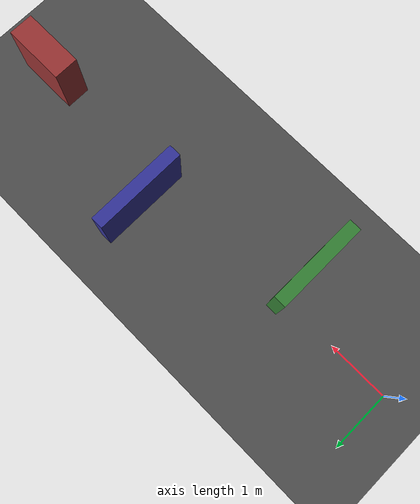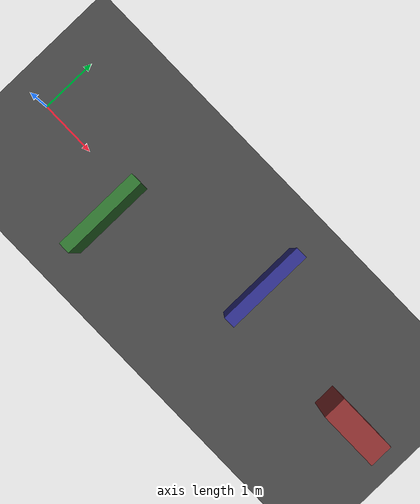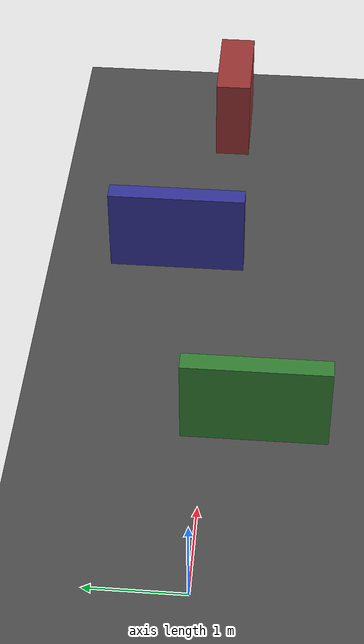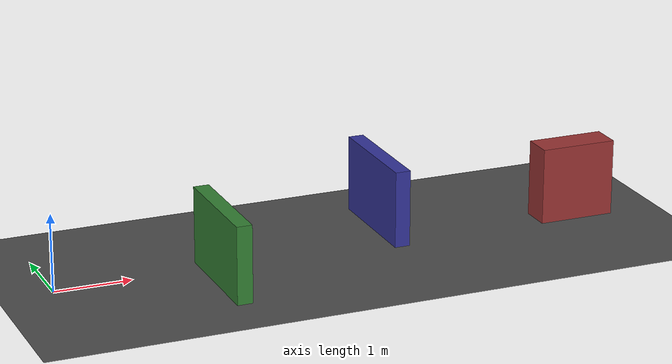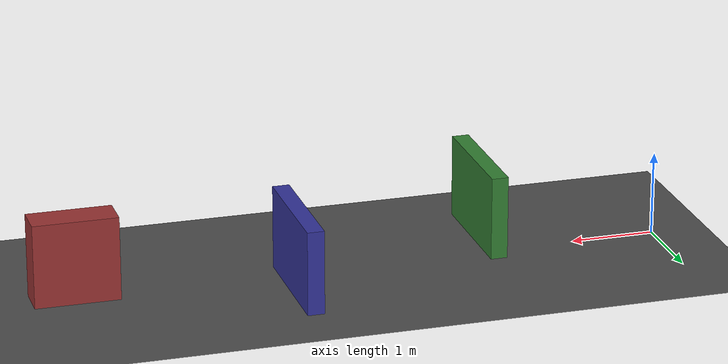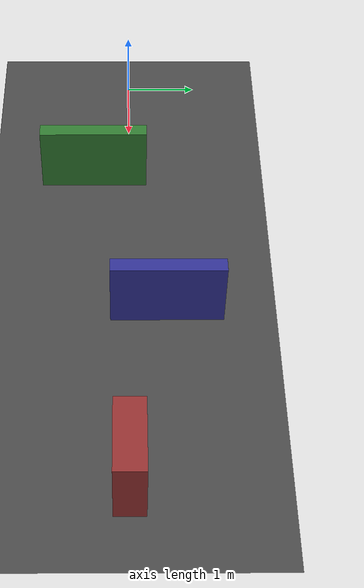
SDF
<?xml version="1.0" ?>
<sdf version="1.8">
    <world name="slalom_gauntlet">
        <physics name="1ms" type="ignored">
            <max_step_size>0.001</max_step_size>
            <real_time_factor>1.0</real_time_factor>
        </physics>
        <plugin filename="gz-sim-physics-system" name="gz::sim::systems::Physics"/>
        <plugin filename="gz-sim-user-commands-system" name="gz::sim::systems::UserCommands"/>
        <plugin filename="gz-sim-scene-broadcaster-system" name="gz::sim::systems::SceneBroadcaster"/>
        <plugin filename="gz-sim-contact-system" name="gz::sim::systems::Contact"/>
        <plugin filename="gz-sim-sensors-system" name="gz::sim::systems::Sensors">
            <render_engine>ogre2</render_engine>
        </plugin>
        <plugin filename="gz-sim-imu-system" name="gz::sim::systems::Imu"/>

        <light type="directional" name="sun">
            <cast_shadows>true</cast_shadows>
            <pose>0 0 10 0 0 0</pose>
            <direction>-0.5 0.1 -0.9</direction>
        </light>

        <!-- THE GAUNTLET: 3 Pillars requiring 3 distinct strafe maneuvers -->

        <!-- Pillar 1: Right Side Obstacle -->
        <model name="wall_1">
            <static>true</static>
            <pose>2.0 -0.5 0.5 0 0 0</pose>
            <link name="link">
                <collision name="c1"><geometry><box><size>0.2 1.5 1.0</size></box></geometry></collision>
                <visual name="v1"><geometry><box><size>0.2 1.5 1.0</size></box></geometry>
                    <material><ambient>0.2 0.5 0.2 1</ambient><diffuse>0.2 0.5 0.2 1</diffuse></material>
                </visual>
            </link>
        </model>

        <!-- Pillar 2: Left Side Obstacle -->
        <model name="wall_2">
            <static>true</static>
            <pose>4.5 0.5 0.5 0 0 0</pose>
            <link name="link">
                <collision name="c1"><geometry><box><size>0.2 1.5 1.0</size></box></geometry></collision>
                <visual name="v1"><geometry><box><size>0.2 1.5 1.0</size></box></geometry>
                    <material><ambient>0.2 0.2 0.6 1</ambient><diffuse>0.2 0.2 0.6 1</diffuse></material>
                </visual>
            </link>
        </model>

        <!-- Pillar 3: Center Block -->
        <model name="wall_3">
            <static>true</static>
            <pose>7.0 0.0 0.5 0 0 0</pose>
            <link name="link">
                <collision name="c1"><geometry><box><size>1.0 0.4 1.0</size></box></geometry></collision>
                <visual name="v1"><geometry><box><size>1.0 0.4 1.0</size></box></geometry>
                    <material><ambient>0.6 0.2 0.2 1</ambient><diffuse>0.6 0.2 0.2 1</diffuse></material>
                </visual>
            </link>
        </model>

        <model name="ground_plane">
            <static>true</static>
            <link name="link">
                <collision name="collision"><geometry><plane><normal>0 0 1</normal><size>30 30</size></plane></geometry></collision>
                <visual name="visual">
                    <geometry><plane><normal>0 0 1</normal><size>30 30</size></plane></geometry>
                    <material><ambient>0.3 0.3 0.3 1</ambient><diffuse>0.3 0.3 0.3 1</diffuse></material>
                </visual>
            </link>
        </model>
    </world>
</sdf>
